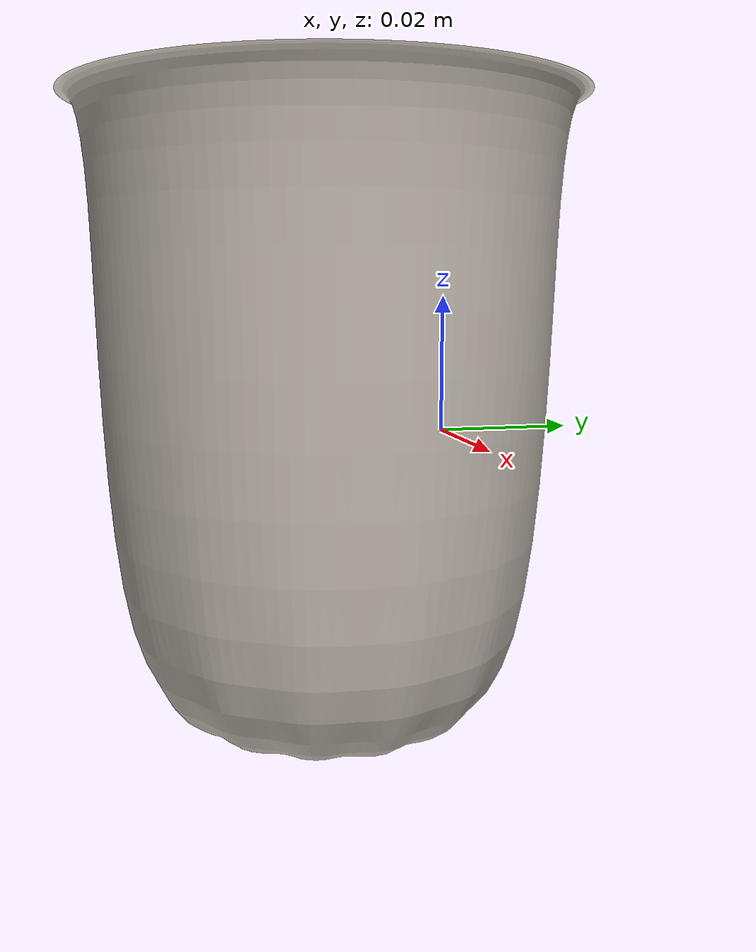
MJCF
<mujoco model="mug_57">
  <asset>
    <mesh file="visual/model_normalized_0.obj" name="model_normalized_0_vis" scale="0.11 0.11 0.11" refquat="0.7071067811865472 0.0 0.0 0.7071067811865476"/>
    <texture type="2d" name="image0" file="visual/image0.png"/>
    <material name="mugMat" texture="image0" specular="0.1" shininess="0.2" emission="0.15"/>
    <mesh file="collision/collision_mesh_collision_0.obj" name="mug_collision_mesh_0" scale="0.11 0.11 0.11" refquat="0.7071067811865472 0.0 0.0 0.7071067811865476"/>
    <mesh file="collision/collision_mesh_collision_1.obj" name="mug_collision_mesh_1" scale="0.11 0.11 0.11" refquat="0.7071067811865472 0.0 0.0 0.7071067811865476"/>
    <mesh file="collision/collision_mesh_collision_2.obj" name="mug_collision_mesh_2" scale="0.11 0.11 0.11" refquat="0.7071067811865472 0.0 0.0 0.7071067811865476"/>
    <mesh file="collision/collision_mesh_collision_3.obj" name="mug_collision_mesh_3" scale="0.11 0.11 0.11" refquat="0.7071067811865472 0.0 0.0 0.7071067811865476"/>
    <mesh file="collision/collision_mesh_collision_4.obj" name="mug_collision_mesh_4" scale="0.11 0.11 0.11" refquat="0.7071067811865472 0.0 0.0 0.7071067811865476"/>
    <mesh file="collision/collision_mesh_collision_5.obj" name="mug_collision_mesh_5" scale="0.11 0.11 0.11" refquat="0.7071067811865472 0.0 0.0 0.7071067811865476"/>
    <mesh file="collision/collision_mesh_collision_6.obj" name="mug_collision_mesh_6" scale="0.11 0.11 0.11" refquat="0.7071067811865472 0.0 0.0 0.7071067811865476"/>
    <mesh file="collision/collision_mesh_collision_7.obj" name="mug_collision_mesh_7" scale="0.11 0.11 0.11" refquat="0.7071067811865472 0.0 0.0 0.7071067811865476"/>
    <mesh file="collision/collision_mesh_collision_8.obj" name="mug_collision_mesh_8" scale="0.11 0.11 0.11" refquat="0.7071067811865472 0.0 0.0 0.7071067811865476"/>
    <mesh file="collision/collision_mesh_collision_9.obj" name="mug_collision_mesh_9" scale="0.11 0.11 0.11" refquat="0.7071067811865472 0.0 0.0 0.7071067811865476"/>
    <mesh file="collision/collision_mesh_collision_10.obj" name="mug_collision_mesh_10" scale="0.11 0.11 0.11" refquat="0.7071067811865472 0.0 0.0 0.7071067811865476"/>
    <mesh file="collision/collision_mesh_collision_11.obj" name="mug_collision_mesh_11" scale="0.11 0.11 0.11" refquat="0.7071067811865472 0.0 0.0 0.7071067811865476"/>
    <mesh file="collision/collision_mesh_collision_12.obj" name="mug_collision_mesh_12" scale="0.11 0.11 0.11" refquat="0.7071067811865472 0.0 0.0 0.7071067811865476"/>
    <mesh file="collision/collision_mesh_collision_13.obj" name="mug_collision_mesh_13" scale="0.11 0.11 0.11" refquat="0.7071067811865472 0.0 0.0 0.7071067811865476"/>
    <mesh file="collision/collision_mesh_collision_14.obj" name="mug_collision_mesh_14" scale="0.11 0.11 0.11" refquat="0.7071067811865472 0.0 0.0 0.7071067811865476"/>
    <mesh file="collision/collision_mesh_collision_15.obj" name="mug_collision_mesh_15" scale="0.11 0.11 0.11" refquat="0.7071067811865472 0.0 0.0 0.7071067811865476"/>
  </asset>
  <default>
    <default class="region">
      <geom group="1" conaffinity="0" contype="0" rgba="0 1 0 0" density="0"/>
    </default>
    <default class="collision">
      <geom group="3" rgba="0.5 0 0 0.5" density="0"/>
    </default>
  </default>
  <worldbody>
    <body>
      <body name="object">
        <geom density="0" friction="1.2 0.05 0.001" type="mesh" mesh="model_normalized_0_vis" conaffinity="0" contype="0" group="1" material="mugMat" mass="0.3"/>
        <geom class="region" name="reg_bbox" type="box" pos="-1.6500000021846263e-09 0.0 3.300000001316139e-09" size="0.03931583755 0.055 0.0456374633" density="0"/>        <geom mesh="mug_collision_mesh_0" type="mesh" class="collision" density="0"/>
        <geom mesh="mug_collision_mesh_1" type="mesh" class="collision" density="0"/>
        <geom mesh="mug_collision_mesh_2" type="mesh" class="collision" density="0"/>
        <geom mesh="mug_collision_mesh_3" type="mesh" class="collision" density="0"/>
        <geom mesh="mug_collision_mesh_4" type="mesh" class="collision" density="0"/>
        <geom mesh="mug_collision_mesh_5" type="mesh" class="collision" density="0"/>
        <geom mesh="mug_collision_mesh_6" type="mesh" class="collision" density="0"/>
        <geom mesh="mug_collision_mesh_7" type="mesh" class="collision" density="0"/>
        <geom mesh="mug_collision_mesh_8" type="mesh" class="collision" density="0"/>
        <geom mesh="mug_collision_mesh_9" type="mesh" class="collision" density="0"/>
        <geom mesh="mug_collision_mesh_10" type="mesh" class="collision" density="0"/>
        <geom mesh="mug_collision_mesh_11" type="mesh" class="collision" density="0"/>
        <geom mesh="mug_collision_mesh_12" type="mesh" class="collision" density="0"/>
        <geom mesh="mug_collision_mesh_13" type="mesh" class="collision" density="0"/>
        <geom mesh="mug_collision_mesh_14" type="mesh" class="collision" density="0"/>
        <geom mesh="mug_collision_mesh_15" type="mesh" class="collision" density="0"/>
        <geom rgba="0 0 0 0" size="0.038 0.035" pos="0 0.015 0.0" type="cylinder" name="liquid" class="region" density="0"/>        <geom rgba="0 0 0 0 " size="0.034 0.041" pos="0 0.015 0.003" type="cylinder" name="reg_int" class="region" density="0"/>      </body>
    </body>
  </worldbody>
</mujoco>
